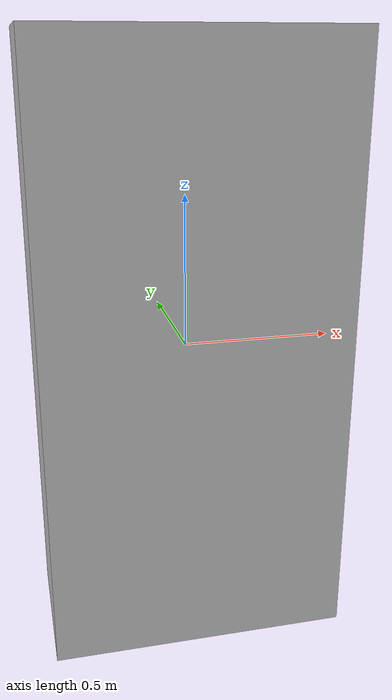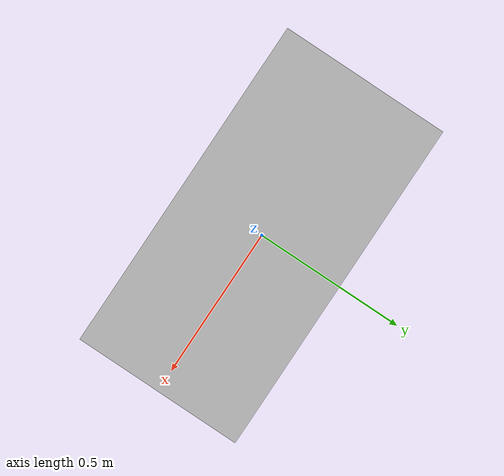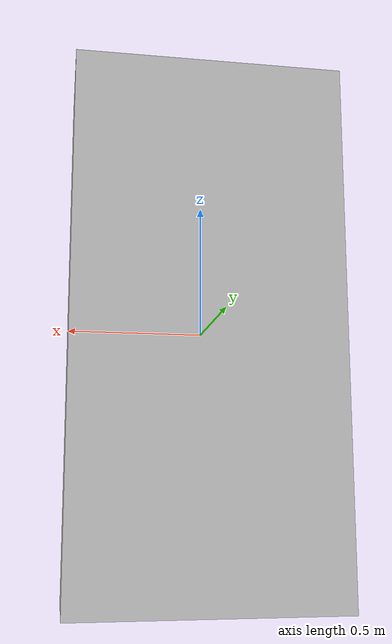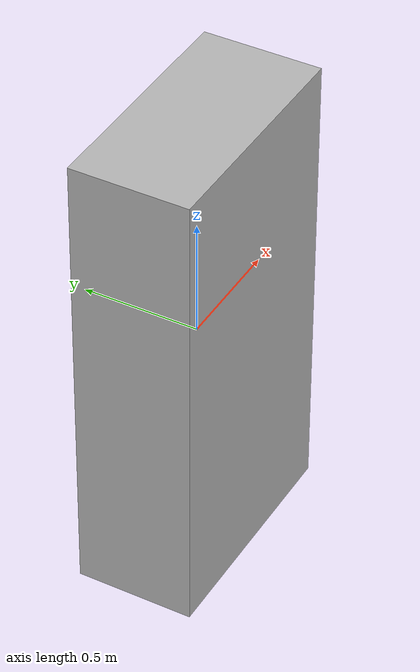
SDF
<?xml version="1.0"?>
<sdf version="1.4">
	<model name="single_link">
	   <link name="base">
	        <visual name="visual_base">
		       <pose>0 0 0 0 0 0</pose>
		       <geometry>
		           <box>
		               <size>1 0.5 2</size>
		           </box>
		       </geometry>
		   </visual>
	   </link>
	</model>
</sdf>
